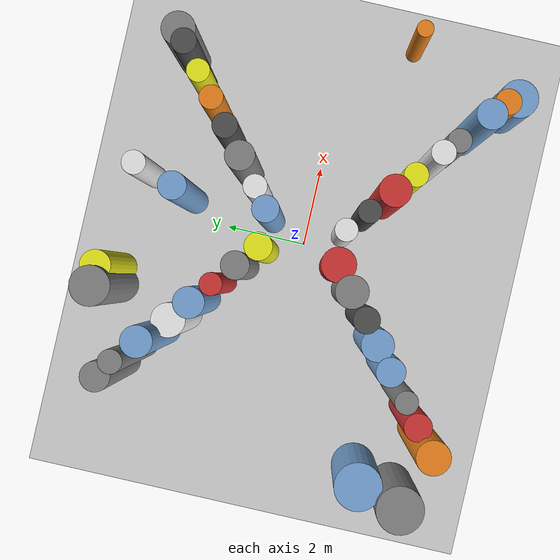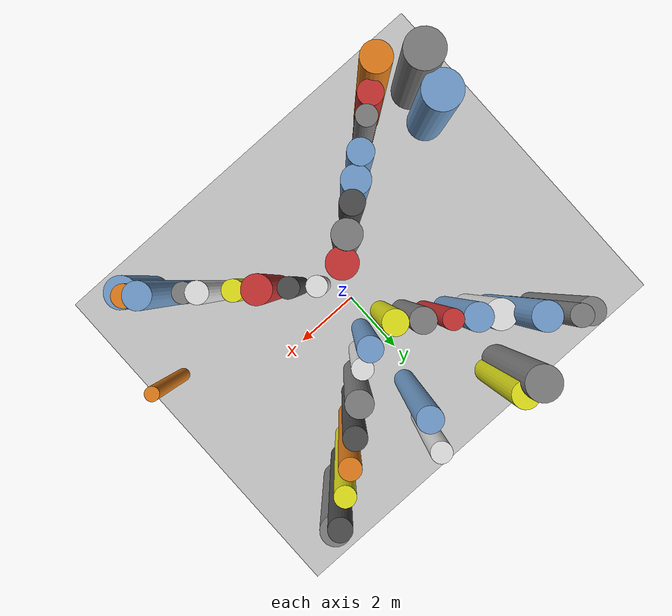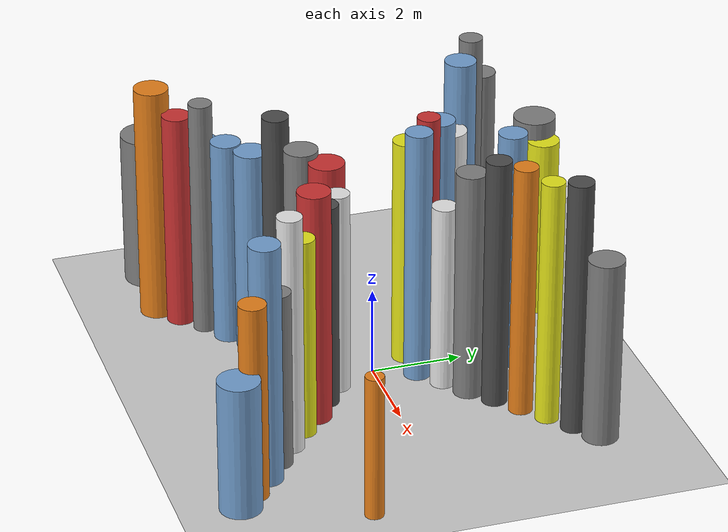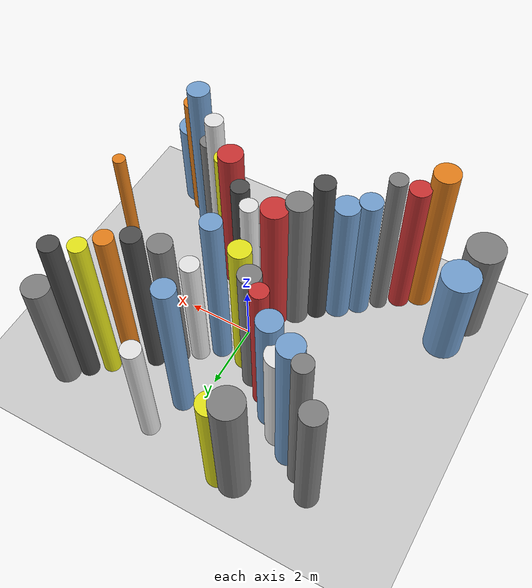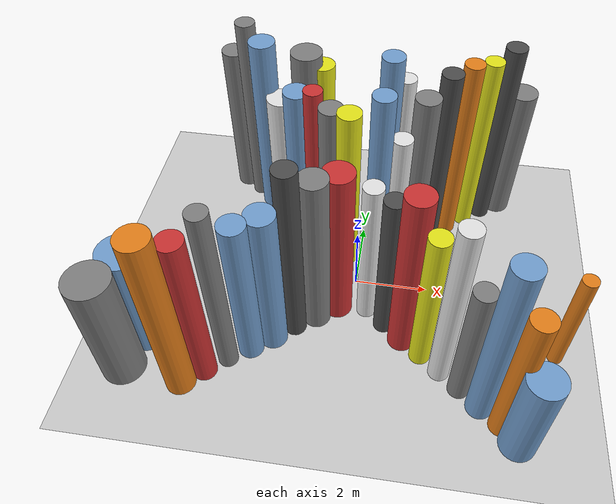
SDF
<?xml version='1.0'?>
<sdf version='1.6'>
  <world name='routeA_rl_v1__dense_recovery__rl_train__bottleneck_corridor__000026'>
    <!-- Sun light -->
    <light name='sun' type='directional'>
      <cast_shadows>1</cast_shadows>
      <pose>0 0 10 0 0 0</pose>
      <diffuse>0.8 0.8 0.8 1</diffuse>
      <specular>0.2 0.2 0.2 1</specular>
      <attenuation>
        <range>1000</range>
        <constant>0.9</constant>
        <linear>0.01</linear>
        <quadratic>0.001</quadratic>
      </attenuation>
      <direction>-0.5 0.1 -0.9</direction>
    </light>

    <!-- Ground plane -->
    <model name='ground_plane'>
      <static>1</static>
      <link name='link'>
        <collision name='collision'>
          <geometry>
            <plane>
              <normal>0 0 1</normal>
              <size>100 100</size>
            </plane>
          </geometry>
          <surface>
            <contact>
              <collide_bitmask>65535</collide_bitmask>
              <ode/>
            </contact>
            <friction>
              <ode>
                <mu>100</mu>
                <mu2>50</mu2>
              </ode>
              <torsional><ode/></torsional>
            </friction>
            <bounce/>
          </surface>
          <max_contacts>10</max_contacts>
        </collision>
        <visual name='visual'>
          <cast_shadows>0</cast_shadows>
          <geometry>
            <plane>
              <normal>0 0 1</normal>
              <size>100 100</size>
            </plane>
          </geometry>
          <material>
            <script>
              <uri>file://media/materials/scripts/gazebo.material</uri>
              <n>Gazebo/Grey</n>
            </script>
          </material>
        </visual>
      </link>
    </model>

    <!-- Environment -->
    <magnetic_field>6e-06 2.3e-05 -4.2e-05</magnetic_field>
    <atmosphere type='adiabatic'/>
    <physics name='default_physics' default='0' type='ode'>
      <gravity>0 0 -9.8</gravity>
      <max_step_size>0.004</max_step_size>
      <real_time_factor>1</real_time_factor>
      <real_time_update_rate>250</real_time_update_rate>
    </physics>
    <scene>
      <ambient>0.4 0.4 0.4 1</ambient>
      <background>0.7 0.7 0.7 1</background>
      <shadows>1</shadows>
    </scene>
    <wind/>
    <spherical_coordinates>
      <surface_model>EARTH_WGS84</surface_model>
      <latitude_deg>0</latitude_deg>
      <longitude_deg>0</longitude_deg>
      <elevation>0</elevation>
      <heading_deg>0</heading_deg>
    </spherical_coordinates>

    <!-- ============ OBSTACLES (40) ============ -->
    <model name='funnel_l_0'>
      <static>1</static>
      <link name='link'>
        <visual name='visual'>
          <geometry>
            <cylinder>
              <radius>0.3863</radius>
              <length>5.5651</length>
            </cylinder>
          </geometry>
          <material>
            <script>
              <n>Gazebo/Orange</n>
              <uri>file://media/materials/scripts/gazebo.material</uri>
            </script>
            <ambient>0.9 0.5 0.1 1</ambient>
          </material>
        </visual>
        <collision name='collision'>
          <geometry>
            <cylinder>
              <radius>0.3863</radius>
              <length>5.5651</length>
            </cylinder>
          </geometry>
          <max_contacts>10</max_contacts>
          <surface>
            <contact><ode/></contact>
            <bounce/>
            <friction>
              <ode><mu>1</mu><mu2>1</mu2></ode>
              <torsional><ode/></torsional>
            </friction>
          </surface>
        </collision>
      </link>
      <pose>-4.0000 -3.8000 2.7826 0 0 0.0000</pose>
    </model>

    <model name='funnel_r_0'>
      <static>1</static>
      <link name='link'>
        <visual name='visual'>
          <geometry>
            <cylinder>
              <radius>0.3448</radius>
              <length>4.8491</length>
            </cylinder>
          </geometry>
          <material>
            <script>
              <n>Gazebo/Grey</n>
              <uri>file://media/materials/scripts/gazebo.material</uri>
            </script>
            <ambient>0.5 0.5 0.5 1</ambient>
          </material>
        </visual>
        <collision name='collision'>
          <geometry>
            <cylinder>
              <radius>0.3448</radius>
              <length>4.8491</length>
            </cylinder>
          </geometry>
          <max_contacts>10</max_contacts>
          <surface>
            <contact><ode/></contact>
            <bounce/>
            <friction>
              <ode><mu>1</mu><mu2>1</mu2></ode>
              <torsional><ode/></torsional>
            </friction>
          </surface>
        </collision>
      </link>
      <pose>-4.0000 3.8000 2.4245 0 0 0.0000</pose>
    </model>

    <model name='funnel_l_1'>
      <static>1</static>
      <link name='link'>
        <visual name='visual'>
          <geometry>
            <cylinder>
              <radius>0.3183</radius>
              <length>5.0921</length>
            </cylinder>
          </geometry>
          <material>
            <script>
              <n>Gazebo/Red</n>
              <uri>file://media/materials/scripts/gazebo.material</uri>
            </script>
            <ambient>0.8 0.2 0.2 1</ambient>
          </material>
        </visual>
        <collision name='collision'>
          <geometry>
            <cylinder>
              <radius>0.3183</radius>
              <length>5.0921</length>
            </cylinder>
          </geometry>
          <max_contacts>10</max_contacts>
          <surface>
            <contact><ode/></contact>
            <bounce/>
            <friction>
              <ode><mu>1</mu><mu2>1</mu2></ode>
              <torsional><ode/></torsional>
            </friction>
          </surface>
        </collision>
      </link>
      <pose>-3.4857 -3.3857 2.5460 0 0 0.0000</pose>
    </model>

    <model name='funnel_r_1'>
      <static>1</static>
      <link name='link'>
        <visual name='visual'>
          <geometry>
            <cylinder>
              <radius>0.2668</radius>
              <length>5.9861</length>
            </cylinder>
          </geometry>
          <material>
            <script>
              <n>Gazebo/Grey</n>
              <uri>file://media/materials/scripts/gazebo.material</uri>
            </script>
            <ambient>0.5 0.5 0.5 1</ambient>
          </material>
        </visual>
        <collision name='collision'>
          <geometry>
            <cylinder>
              <radius>0.2668</radius>
              <length>5.9861</length>
            </cylinder>
          </geometry>
          <max_contacts>10</max_contacts>
          <surface>
            <contact><ode/></contact>
            <bounce/>
            <friction>
              <ode><mu>1</mu><mu2>1</mu2></ode>
              <torsional><ode/></torsional>
            </friction>
          </surface>
        </collision>
      </link>
      <pose>-3.4857 3.3857 2.9931 0 0 0.0000</pose>
    </model>

    <model name='funnel_l_2'>
      <static>1</static>
      <link name='link'>
        <visual name='visual'>
          <geometry>
            <cylinder>
              <radius>0.2610</radius>
              <length>5.5653</length>
            </cylinder>
          </geometry>
          <material>
            <script>
              <n>Gazebo/Grey</n>
              <uri>file://media/materials/scripts/gazebo.material</uri>
            </script>
            <ambient>0.5 0.5 0.5 1</ambient>
          </material>
        </visual>
        <collision name='collision'>
          <geometry>
            <cylinder>
              <radius>0.2610</radius>
              <length>5.5653</length>
            </cylinder>
          </geometry>
          <max_contacts>10</max_contacts>
          <surface>
            <contact><ode/></contact>
            <bounce/>
            <friction>
              <ode><mu>1</mu><mu2>1</mu2></ode>
              <torsional><ode/></torsional>
            </friction>
          </surface>
        </collision>
      </link>
      <pose>-2.9714 -2.9714 2.7826 0 0 0.0000</pose>
    </model>

    <model name='funnel_r_2'>
      <static>1</static>
      <link name='link'>
        <visual name='visual'>
          <geometry>
            <cylinder>
              <radius>0.3562</radius>
              <length>5.7252</length>
            </cylinder>
          </geometry>
          <material>
            <script>
              <n>Gazebo/Blue</n>
              <uri>file://media/materials/scripts/gazebo.material</uri>
            </script>
            <ambient>0.447 0.624 0.812 1</ambient>
          </material>
        </visual>
        <collision name='collision'>
          <geometry>
            <cylinder>
              <radius>0.3562</radius>
              <length>5.7252</length>
            </cylinder>
          </geometry>
          <max_contacts>10</max_contacts>
          <surface>
            <contact><ode/></contact>
            <bounce/>
            <friction>
              <ode><mu>1</mu><mu2>1</mu2></ode>
              <torsional><ode/></torsional>
            </friction>
          </surface>
        </collision>
      </link>
      <pose>-2.9714 2.9714 2.8626 0 0 0.0000</pose>
    </model>

    <model name='funnel_l_3'>
      <static>1</static>
      <link name='link'>
        <visual name='visual'>
          <geometry>
            <cylinder>
              <radius>0.3358</radius>
              <length>4.8277</length>
            </cylinder>
          </geometry>
          <material>
            <script>
              <n>Gazebo/Blue</n>
              <uri>file://media/materials/scripts/gazebo.material</uri>
            </script>
            <ambient>0.447 0.624 0.812 1</ambient>
          </material>
        </visual>
        <collision name='collision'>
          <geometry>
            <cylinder>
              <radius>0.3358</radius>
              <length>4.8277</length>
            </cylinder>
          </geometry>
          <max_contacts>10</max_contacts>
          <surface>
            <contact><ode/></contact>
            <bounce/>
            <friction>
              <ode><mu>1</mu><mu2>1</mu2></ode>
              <torsional><ode/></torsional>
            </friction>
          </surface>
        </collision>
      </link>
      <pose>-2.4571 -2.5571 2.4139 0 0 0.0000</pose>
    </model>

    <model name='funnel_r_3'>
      <static>1</static>
      <link name='link'>
        <visual name='visual'>
          <geometry>
            <cylinder>
              <radius>0.3974</radius>
              <length>4.3222</length>
            </cylinder>
          </geometry>
          <material>
            <script>
              <n>Gazebo/White</n>
              <uri>file://media/materials/scripts/gazebo.material</uri>
            </script>
            <ambient>0.9 0.9 0.9 1</ambient>
          </material>
        </visual>
        <collision name='collision'>
          <geometry>
            <cylinder>
              <radius>0.3974</radius>
              <length>4.3222</length>
            </cylinder>
          </geometry>
          <max_contacts>10</max_contacts>
          <surface>
            <contact><ode/></contact>
            <bounce/>
            <friction>
              <ode><mu>1</mu><mu2>1</mu2></ode>
              <torsional><ode/></torsional>
            </friction>
          </surface>
        </collision>
      </link>
      <pose>-2.4571 2.5571 2.1611 0 0 0.0000</pose>
    </model>

    <model name='funnel_l_4'>
      <static>1</static>
      <link name='link'>
        <visual name='visual'>
          <geometry>
            <cylinder>
              <radius>0.3744</radius>
              <length>4.7901</length>
            </cylinder>
          </geometry>
          <material>
            <script>
              <n>Gazebo/Blue</n>
              <uri>file://media/materials/scripts/gazebo.material</uri>
            </script>
            <ambient>0.447 0.624 0.812 1</ambient>
          </material>
        </visual>
        <collision name='collision'>
          <geometry>
            <cylinder>
              <radius>0.3744</radius>
              <length>4.7901</length>
            </cylinder>
          </geometry>
          <max_contacts>10</max_contacts>
          <surface>
            <contact><ode/></contact>
            <bounce/>
            <friction>
              <ode><mu>1</mu><mu2>1</mu2></ode>
              <torsional><ode/></torsional>
            </friction>
          </surface>
        </collision>
      </link>
      <pose>-1.9429 -2.1429 2.3950 0 0 0.0000</pose>
    </model>

    <model name='funnel_r_4'>
      <static>1</static>
      <link name='link'>
        <visual name='visual'>
          <geometry>
            <cylinder>
              <radius>0.3584</radius>
              <length>4.8876</length>
            </cylinder>
          </geometry>
          <material>
            <script>
              <n>Gazebo/Blue</n>
              <uri>file://media/materials/scripts/gazebo.material</uri>
            </script>
            <ambient>0.447 0.624 0.812 1</ambient>
          </material>
        </visual>
        <collision name='collision'>
          <geometry>
            <cylinder>
              <radius>0.3584</radius>
              <length>4.8876</length>
            </cylinder>
          </geometry>
          <max_contacts>10</max_contacts>
          <surface>
            <contact><ode/></contact>
            <bounce/>
            <friction>
              <ode><mu>1</mu><mu2>1</mu2></ode>
              <torsional><ode/></torsional>
            </friction>
          </surface>
        </collision>
      </link>
      <pose>-1.9429 2.1429 2.4438 0 0 0.0000</pose>
    </model>

    <model name='funnel_l_5'>
      <static>1</static>
      <link name='link'>
        <visual name='visual'>
          <geometry>
            <cylinder>
              <radius>0.2966</radius>
              <length>5.8023</length>
            </cylinder>
          </geometry>
          <material>
            <script>
              <n>Gazebo/DarkGrey</n>
              <uri>file://media/materials/scripts/gazebo.material</uri>
            </script>
            <ambient>0.3 0.3 0.3 1</ambient>
          </material>
        </visual>
        <collision name='collision'>
          <geometry>
            <cylinder>
              <radius>0.2966</radius>
              <length>5.8023</length>
            </cylinder>
          </geometry>
          <max_contacts>10</max_contacts>
          <surface>
            <contact><ode/></contact>
            <bounce/>
            <friction>
              <ode><mu>1</mu><mu2>1</mu2></ode>
              <torsional><ode/></torsional>
            </friction>
          </surface>
        </collision>
      </link>
      <pose>-1.4286 -1.7286 2.9012 0 0 0.0000</pose>
    </model>

    <model name='funnel_r_5'>
      <static>1</static>
      <link name='link'>
        <visual name='visual'>
          <geometry>
            <cylinder>
              <radius>0.2560</radius>
              <length>5.2682</length>
            </cylinder>
          </geometry>
          <material>
            <script>
              <n>Gazebo/Red</n>
              <uri>file://media/materials/scripts/gazebo.material</uri>
            </script>
            <ambient>0.8 0.2 0.2 1</ambient>
          </material>
        </visual>
        <collision name='collision'>
          <geometry>
            <cylinder>
              <radius>0.2560</radius>
              <length>5.2682</length>
            </cylinder>
          </geometry>
          <max_contacts>10</max_contacts>
          <surface>
            <contact><ode/></contact>
            <bounce/>
            <friction>
              <ode><mu>1</mu><mu2>1</mu2></ode>
              <torsional><ode/></torsional>
            </friction>
          </surface>
        </collision>
      </link>
      <pose>-1.4286 1.7286 2.6341 0 0 0.0000</pose>
    </model>

    <model name='funnel_l_6'>
      <static>1</static>
      <link name='link'>
        <visual name='visual'>
          <geometry>
            <cylinder>
              <radius>0.3750</radius>
              <length>5.2077</length>
            </cylinder>
          </geometry>
          <material>
            <script>
              <n>Gazebo/Grey</n>
              <uri>file://media/materials/scripts/gazebo.material</uri>
            </script>
            <ambient>0.5 0.5 0.5 1</ambient>
          </material>
        </visual>
        <collision name='collision'>
          <geometry>
            <cylinder>
              <radius>0.3750</radius>
              <length>5.2077</length>
            </cylinder>
          </geometry>
          <max_contacts>10</max_contacts>
          <surface>
            <contact><ode/></contact>
            <bounce/>
            <friction>
              <ode><mu>1</mu><mu2>1</mu2></ode>
              <torsional><ode/></torsional>
            </friction>
          </surface>
        </collision>
      </link>
      <pose>-0.9143 -1.3143 2.6038 0 0 0.0000</pose>
    </model>

    <model name='funnel_r_6'>
      <static>1</static>
      <link name='link'>
        <visual name='visual'>
          <geometry>
            <cylinder>
              <radius>0.3232</radius>
              <length>5.1041</length>
            </cylinder>
          </geometry>
          <material>
            <script>
              <n>Gazebo/Grey</n>
              <uri>file://media/materials/scripts/gazebo.material</uri>
            </script>
            <ambient>0.5 0.5 0.5 1</ambient>
          </material>
        </visual>
        <collision name='collision'>
          <geometry>
            <cylinder>
              <radius>0.3232</radius>
              <length>5.1041</length>
            </cylinder>
          </geometry>
          <max_contacts>10</max_contacts>
          <surface>
            <contact><ode/></contact>
            <bounce/>
            <friction>
              <ode><mu>1</mu><mu2>1</mu2></ode>
              <torsional><ode/></torsional>
            </friction>
          </surface>
        </collision>
      </link>
      <pose>-0.9143 1.3143 2.5520 0 0 0.0000</pose>
    </model>

    <model name='funnel_l_7'>
      <static>1</static>
      <link name='link'>
        <visual name='visual'>
          <geometry>
            <cylinder>
              <radius>0.3967</radius>
              <length>5.0836</length>
            </cylinder>
          </geometry>
          <material>
            <script>
              <n>Gazebo/Red</n>
              <uri>file://media/materials/scripts/gazebo.material</uri>
            </script>
            <ambient>0.8 0.2 0.2 1</ambient>
          </material>
        </visual>
        <collision name='collision'>
          <geometry>
            <cylinder>
              <radius>0.3967</radius>
              <length>5.0836</length>
            </cylinder>
          </geometry>
          <max_contacts>10</max_contacts>
          <surface>
            <contact><ode/></contact>
            <bounce/>
            <friction>
              <ode><mu>1</mu><mu2>1</mu2></ode>
              <torsional><ode/></torsional>
            </friction>
          </surface>
        </collision>
      </link>
      <pose>-0.4000 -0.9000 2.5418 0 0 0.0000</pose>
    </model>

    <model name='funnel_r_7'>
      <static>1</static>
      <link name='link'>
        <visual name='visual'>
          <geometry>
            <cylinder>
              <radius>0.3152</radius>
              <length>5.3343</length>
            </cylinder>
          </geometry>
          <material>
            <script>
              <n>Gazebo/Yellow</n>
              <uri>file://media/materials/scripts/gazebo.material</uri>
            </script>
            <ambient>0.9 0.9 0.1 1</ambient>
          </material>
        </visual>
        <collision name='collision'>
          <geometry>
            <cylinder>
              <radius>0.3152</radius>
              <length>5.3343</length>
            </cylinder>
          </geometry>
          <max_contacts>10</max_contacts>
          <surface>
            <contact><ode/></contact>
            <bounce/>
            <friction>
              <ode><mu>1</mu><mu2>1</mu2></ode>
              <torsional><ode/></torsional>
            </friction>
          </surface>
        </collision>
      </link>
      <pose>-0.4000 0.9000 2.6671 0 0 0.0000</pose>
    </model>

    <model name='funnel_out_l_0'>
      <static>1</static>
      <link name='link'>
        <visual name='visual'>
          <geometry>
            <cylinder>
              <radius>0.2644</radius>
              <length>4.7482</length>
            </cylinder>
          </geometry>
          <material>
            <script>
              <n>Gazebo/White</n>
              <uri>file://media/materials/scripts/gazebo.material</uri>
            </script>
            <ambient>0.9 0.9 0.9 1</ambient>
          </material>
        </visual>
        <collision name='collision'>
          <geometry>
            <cylinder>
              <radius>0.2644</radius>
              <length>4.7482</length>
            </cylinder>
          </geometry>
          <max_contacts>10</max_contacts>
          <surface>
            <contact><ode/></contact>
            <bounce/>
            <friction>
              <ode><mu>1</mu><mu2>1</mu2></ode>
              <torsional><ode/></torsional>
            </friction>
          </surface>
        </collision>
      </link>
      <pose>0.4000 -0.9000 2.3741 0 0 0.0000</pose>
    </model>

    <model name='funnel_out_r_0'>
      <static>1</static>
      <link name='link'>
        <visual name='visual'>
          <geometry>
            <cylinder>
              <radius>0.2985</radius>
              <length>5.9244</length>
            </cylinder>
          </geometry>
          <material>
            <script>
              <n>Gazebo/Blue</n>
              <uri>file://media/materials/scripts/gazebo.material</uri>
            </script>
            <ambient>0.447 0.624 0.812 1</ambient>
          </material>
        </visual>
        <collision name='collision'>
          <geometry>
            <cylinder>
              <radius>0.2985</radius>
              <length>5.9244</length>
            </cylinder>
          </geometry>
          <max_contacts>10</max_contacts>
          <surface>
            <contact><ode/></contact>
            <bounce/>
            <friction>
              <ode><mu>1</mu><mu2>1</mu2></ode>
              <torsional><ode/></torsional>
            </friction>
          </surface>
        </collision>
      </link>
      <pose>0.4000 0.9000 2.9622 0 0 0.0000</pose>
    </model>

    <model name='funnel_out_l_1'>
      <static>1</static>
      <link name='link'>
        <visual name='visual'>
          <geometry>
            <cylinder>
              <radius>0.2708</radius>
              <length>4.8162</length>
            </cylinder>
          </geometry>
          <material>
            <script>
              <n>Gazebo/DarkGrey</n>
              <uri>file://media/materials/scripts/gazebo.material</uri>
            </script>
            <ambient>0.3 0.3 0.3 1</ambient>
          </material>
        </visual>
        <collision name='collision'>
          <geometry>
            <cylinder>
              <radius>0.2708</radius>
              <length>4.8162</length>
            </cylinder>
          </geometry>
          <max_contacts>10</max_contacts>
          <surface>
            <contact><ode/></contact>
            <bounce/>
            <friction>
              <ode><mu>1</mu><mu2>1</mu2></ode>
              <torsional><ode/></torsional>
            </friction>
          </surface>
        </collision>
      </link>
      <pose>0.9143 -1.3143 2.4081 0 0 0.0000</pose>
    </model>

    <model name='funnel_out_r_1'>
      <static>1</static>
      <link name='link'>
        <visual name='visual'>
          <geometry>
            <cylinder>
              <radius>0.2796</radius>
              <length>4.3571</length>
            </cylinder>
          </geometry>
          <material>
            <script>
              <n>Gazebo/White</n>
              <uri>file://media/materials/scripts/gazebo.material</uri>
            </script>
            <ambient>0.9 0.9 0.9 1</ambient>
          </material>
        </visual>
        <collision name='collision'>
          <geometry>
            <cylinder>
              <radius>0.2796</radius>
              <length>4.3571</length>
            </cylinder>
          </geometry>
          <max_contacts>10</max_contacts>
          <surface>
            <contact><ode/></contact>
            <bounce/>
            <friction>
              <ode><mu>1</mu><mu2>1</mu2></ode>
              <torsional><ode/></torsional>
            </friction>
          </surface>
        </collision>
      </link>
      <pose>0.9143 1.3143 2.1785 0 0 0.0000</pose>
    </model>

    <model name='funnel_out_l_2'>
      <static>1</static>
      <link name='link'>
        <visual name='visual'>
          <geometry>
            <cylinder>
              <radius>0.3633</radius>
              <length>5.4557</length>
            </cylinder>
          </geometry>
          <material>
            <script>
              <n>Gazebo/Red</n>
              <uri>file://media/materials/scripts/gazebo.material</uri>
            </script>
            <ambient>0.8 0.2 0.2 1</ambient>
          </material>
        </visual>
        <collision name='collision'>
          <geometry>
            <cylinder>
              <radius>0.3633</radius>
              <length>5.4557</length>
            </cylinder>
          </geometry>
          <max_contacts>10</max_contacts>
          <surface>
            <contact><ode/></contact>
            <bounce/>
            <friction>
              <ode><mu>1</mu><mu2>1</mu2></ode>
              <torsional><ode/></torsional>
            </friction>
          </surface>
        </collision>
      </link>
      <pose>1.4286 -1.7286 2.7278 0 0 0.0000</pose>
    </model>

    <model name='funnel_out_r_2'>
      <static>1</static>
      <link name='link'>
        <visual name='visual'>
          <geometry>
            <cylinder>
              <radius>0.3369</radius>
              <length>5.3535</length>
            </cylinder>
          </geometry>
          <material>
            <script>
              <n>Gazebo/Grey</n>
              <uri>file://media/materials/scripts/gazebo.material</uri>
            </script>
            <ambient>0.5 0.5 0.5 1</ambient>
          </material>
        </visual>
        <collision name='collision'>
          <geometry>
            <cylinder>
              <radius>0.3369</radius>
              <length>5.3535</length>
            </cylinder>
          </geometry>
          <max_contacts>10</max_contacts>
          <surface>
            <contact><ode/></contact>
            <bounce/>
            <friction>
              <ode><mu>1</mu><mu2>1</mu2></ode>
              <torsional><ode/></torsional>
            </friction>
          </surface>
        </collision>
      </link>
      <pose>1.4286 1.7286 2.6767 0 0 0.0000</pose>
    </model>

    <model name='funnel_out_l_3'>
      <static>1</static>
      <link name='link'>
        <visual name='visual'>
          <geometry>
            <cylinder>
              <radius>0.2775</radius>
              <length>4.6928</length>
            </cylinder>
          </geometry>
          <material>
            <script>
              <n>Gazebo/Yellow</n>
              <uri>file://media/materials/scripts/gazebo.material</uri>
            </script>
            <ambient>0.9 0.9 0.1 1</ambient>
          </material>
        </visual>
        <collision name='collision'>
          <geometry>
            <cylinder>
              <radius>0.2775</radius>
              <length>4.6928</length>
            </cylinder>
          </geometry>
          <max_contacts>10</max_contacts>
          <surface>
            <contact><ode/></contact>
            <bounce/>
            <friction>
              <ode><mu>1</mu><mu2>1</mu2></ode>
              <torsional><ode/></torsional>
            </friction>
          </surface>
        </collision>
      </link>
      <pose>1.9429 -2.1429 2.3464 0 0 0.0000</pose>
    </model>

    <model name='funnel_out_r_3'>
      <static>1</static>
      <link name='link'>
        <visual name='visual'>
          <geometry>
            <cylinder>
              <radius>0.2808</radius>
              <length>5.8227</length>
            </cylinder>
          </geometry>
          <material>
            <script>
              <n>Gazebo/DarkGrey</n>
              <uri>file://media/materials/scripts/gazebo.material</uri>
            </script>
            <ambient>0.3 0.3 0.3 1</ambient>
          </material>
        </visual>
        <collision name='collision'>
          <geometry>
            <cylinder>
              <radius>0.2808</radius>
              <length>5.8227</length>
            </cylinder>
          </geometry>
          <max_contacts>10</max_contacts>
          <surface>
            <contact><ode/></contact>
            <bounce/>
            <friction>
              <ode><mu>1</mu><mu2>1</mu2></ode>
              <torsional><ode/></torsional>
            </friction>
          </surface>
        </collision>
      </link>
      <pose>1.9429 2.1429 2.9113 0 0 0.0000</pose>
    </model>

    <model name='funnel_out_l_4'>
      <static>1</static>
      <link name='link'>
        <visual name='visual'>
          <geometry>
            <cylinder>
              <radius>0.2746</radius>
              <length>5.5238</length>
            </cylinder>
          </geometry>
          <material>
            <script>
              <n>Gazebo/White</n>
              <uri>file://media/materials/scripts/gazebo.material</uri>
            </script>
            <ambient>0.9 0.9 0.9 1</ambient>
          </material>
        </visual>
        <collision name='collision'>
          <geometry>
            <cylinder>
              <radius>0.2746</radius>
              <length>5.5238</length>
            </cylinder>
          </geometry>
          <max_contacts>10</max_contacts>
          <surface>
            <contact><ode/></contact>
            <bounce/>
            <friction>
              <ode><mu>1</mu><mu2>1</mu2></ode>
              <torsional><ode/></torsional>
            </friction>
          </surface>
        </collision>
      </link>
      <pose>2.4571 -2.5571 2.7619 0 0 0.0000</pose>
    </model>

    <model name='funnel_out_r_4'>
      <static>1</static>
      <link name='link'>
        <visual name='visual'>
          <geometry>
            <cylinder>
              <radius>0.2648</radius>
              <length>5.8661</length>
            </cylinder>
          </geometry>
          <material>
            <script>
              <n>Gazebo/Orange</n>
              <uri>file://media/materials/scripts/gazebo.material</uri>
            </script>
            <ambient>0.9 0.5 0.1 1</ambient>
          </material>
        </visual>
        <collision name='collision'>
          <geometry>
            <cylinder>
              <radius>0.2648</radius>
              <length>5.8661</length>
            </cylinder>
          </geometry>
          <max_contacts>10</max_contacts>
          <surface>
            <contact><ode/></contact>
            <bounce/>
            <friction>
              <ode><mu>1</mu><mu2>1</mu2></ode>
              <torsional><ode/></torsional>
            </friction>
          </surface>
        </collision>
      </link>
      <pose>2.4571 2.5571 2.9331 0 0 0.0000</pose>
    </model>

    <model name='funnel_out_l_5'>
      <static>1</static>
      <link name='link'>
        <visual name='visual'>
          <geometry>
            <cylinder>
              <radius>0.2796</radius>
              <length>4.1132</length>
            </cylinder>
          </geometry>
          <material>
            <script>
              <n>Gazebo/Grey</n>
              <uri>file://media/materials/scripts/gazebo.material</uri>
            </script>
            <ambient>0.5 0.5 0.5 1</ambient>
          </material>
        </visual>
        <collision name='collision'>
          <geometry>
            <cylinder>
              <radius>0.2796</radius>
              <length>4.1132</length>
            </cylinder>
          </geometry>
          <max_contacts>10</max_contacts>
          <surface>
            <contact><ode/></contact>
            <bounce/>
            <friction>
              <ode><mu>1</mu><mu2>1</mu2></ode>
              <torsional><ode/></torsional>
            </friction>
          </surface>
        </collision>
      </link>
      <pose>2.9714 -2.9714 2.0566 0 0 0.0000</pose>
    </model>

    <model name='funnel_out_r_5'>
      <static>1</static>
      <link name='link'>
        <visual name='visual'>
          <geometry>
            <cylinder>
              <radius>0.2566</radius>
              <length>5.7157</length>
            </cylinder>
          </geometry>
          <material>
            <script>
              <n>Gazebo/Yellow</n>
              <uri>file://media/materials/scripts/gazebo.material</uri>
            </script>
            <ambient>0.9 0.9 0.1 1</ambient>
          </material>
        </visual>
        <collision name='collision'>
          <geometry>
            <cylinder>
              <radius>0.2566</radius>
              <length>5.7157</length>
            </cylinder>
          </geometry>
          <max_contacts>10</max_contacts>
          <surface>
            <contact><ode/></contact>
            <bounce/>
            <friction>
              <ode><mu>1</mu><mu2>1</mu2></ode>
              <torsional><ode/></torsional>
            </friction>
          </surface>
        </collision>
      </link>
      <pose>2.9714 2.9714 2.8579 0 0 0.0000</pose>
    </model>

    <model name='funnel_out_l_6'>
      <static>1</static>
      <link name='link'>
        <visual name='visual'>
          <geometry>
            <cylinder>
              <radius>0.3402</radius>
              <length>5.5621</length>
            </cylinder>
          </geometry>
          <material>
            <script>
              <n>Gazebo/Blue</n>
              <uri>file://media/materials/scripts/gazebo.material</uri>
            </script>
            <ambient>0.447 0.624 0.812 1</ambient>
          </material>
        </visual>
        <collision name='collision'>
          <geometry>
            <cylinder>
              <radius>0.3402</radius>
              <length>5.5621</length>
            </cylinder>
          </geometry>
          <max_contacts>10</max_contacts>
          <surface>
            <contact><ode/></contact>
            <bounce/>
            <friction>
              <ode><mu>1</mu><mu2>1</mu2></ode>
              <torsional><ode/></torsional>
            </friction>
          </surface>
        </collision>
      </link>
      <pose>3.4857 -3.3857 2.7810 0 0 0.0000</pose>
    </model>

    <model name='funnel_out_r_6'>
      <static>1</static>
      <link name='link'>
        <visual name='visual'>
          <geometry>
            <cylinder>
              <radius>0.2810</radius>
              <length>5.8989</length>
            </cylinder>
          </geometry>
          <material>
            <script>
              <n>Gazebo/DarkGrey</n>
              <uri>file://media/materials/scripts/gazebo.material</uri>
            </script>
            <ambient>0.3 0.3 0.3 1</ambient>
          </material>
        </visual>
        <collision name='collision'>
          <geometry>
            <cylinder>
              <radius>0.2810</radius>
              <length>5.8989</length>
            </cylinder>
          </geometry>
          <max_contacts>10</max_contacts>
          <surface>
            <contact><ode/></contact>
            <bounce/>
            <friction>
              <ode><mu>1</mu><mu2>1</mu2></ode>
              <torsional><ode/></torsional>
            </friction>
          </surface>
        </collision>
      </link>
      <pose>3.4857 3.3857 2.9494 0 0 0.0000</pose>
    </model>

    <model name='funnel_out_l_7'>
      <static>1</static>
      <link name='link'>
        <visual name='visual'>
          <geometry>
            <cylinder>
              <radius>0.2975</radius>
              <length>4.5345</length>
            </cylinder>
          </geometry>
          <material>
            <script>
              <n>Gazebo/Orange</n>
              <uri>file://media/materials/scripts/gazebo.material</uri>
            </script>
            <ambient>0.9 0.5 0.1 1</ambient>
          </material>
        </visual>
        <collision name='collision'>
          <geometry>
            <cylinder>
              <radius>0.2975</radius>
              <length>4.5345</length>
            </cylinder>
          </geometry>
          <max_contacts>10</max_contacts>
          <surface>
            <contact><ode/></contact>
            <bounce/>
            <friction>
              <ode><mu>1</mu><mu2>1</mu2></ode>
              <torsional><ode/></torsional>
            </friction>
          </surface>
        </collision>
      </link>
      <pose>4.0000 -3.8000 2.2673 0 0 0.0000</pose>
    </model>

    <model name='funnel_out_r_7'>
      <static>1</static>
      <link name='link'>
        <visual name='visual'>
          <geometry>
            <cylinder>
              <radius>0.3946</radius>
              <length>4.2899</length>
            </cylinder>
          </geometry>
          <material>
            <script>
              <n>Gazebo/Grey</n>
              <uri>file://media/materials/scripts/gazebo.material</uri>
            </script>
            <ambient>0.5 0.5 0.5 1</ambient>
          </material>
        </visual>
        <collision name='collision'>
          <geometry>
            <cylinder>
              <radius>0.3946</radius>
              <length>4.2899</length>
            </cylinder>
          </geometry>
          <max_contacts>10</max_contacts>
          <surface>
            <contact><ode/></contact>
            <bounce/>
            <friction>
              <ode><mu>1</mu><mu2>1</mu2></ode>
              <torsional><ode/></torsional>
            </friction>
          </surface>
        </collision>
      </link>
      <pose>4.0000 3.8000 2.1450 0 0 0.0000</pose>
    </model>

    <model name='bn_scatter_0'>
      <static>1</static>
      <link name='link'>
        <visual name='visual'>
          <geometry>
            <cylinder>
              <radius>0.4570</radius>
              <length>3.0513</length>
            </cylinder>
          </geometry>
          <material>
            <script>
              <n>Gazebo/Blue</n>
              <uri>file://media/materials/scripts/gazebo.material</uri>
            </script>
            <ambient>0.447 0.624 0.812 1</ambient>
          </material>
        </visual>
        <collision name='collision'>
          <geometry>
            <cylinder>
              <radius>0.4570</radius>
              <length>3.0513</length>
            </cylinder>
          </geometry>
          <max_contacts>10</max_contacts>
          <surface>
            <contact><ode/></contact>
            <bounce/>
            <friction>
              <ode><mu>1</mu><mu2>1</mu2></ode>
              <torsional><ode/></torsional>
            </friction>
          </surface>
        </collision>
      </link>
      <pose>4.3882 -4.2155 1.5256 0 0 0.0000</pose>
    </model>

    <model name='bn_scatter_1'>
      <static>1</static>
      <link name='link'>
        <visual name='visual'>
          <geometry>
            <cylinder>
              <radius>0.2820</radius>
              <length>4.1893</length>
            </cylinder>
          </geometry>
          <material>
            <script>
              <n>Gazebo/White</n>
              <uri>file://media/materials/scripts/gazebo.material</uri>
            </script>
            <ambient>0.9 0.9 0.9 1</ambient>
          </material>
        </visual>
        <collision name='collision'>
          <geometry>
            <cylinder>
              <radius>0.2820</radius>
              <length>4.1893</length>
            </cylinder>
          </geometry>
          <max_contacts>10</max_contacts>
          <surface>
            <contact><ode/></contact>
            <bounce/>
            <friction>
              <ode><mu>1</mu><mu2>1</mu2></ode>
              <torsional><ode/></torsional>
            </friction>
          </surface>
        </collision>
      </link>
      <pose>0.8413 4.1271 2.0946 0 0 0.0000</pose>
    </model>

    <model name='bn_scatter_2'>
      <static>1</static>
      <link name='link'>
        <visual name='visual'>
          <geometry>
            <cylinder>
              <radius>0.3169</radius>
              <length>5.6102</length>
            </cylinder>
          </geometry>
          <material>
            <script>
              <n>Gazebo/Blue</n>
              <uri>file://media/materials/scripts/gazebo.material</uri>
            </script>
            <ambient>0.447 0.624 0.812 1</ambient>
          </material>
        </visual>
        <collision name='collision'>
          <geometry>
            <cylinder>
              <radius>0.3169</radius>
              <length>5.6102</length>
            </cylinder>
          </geometry>
          <max_contacts>10</max_contacts>
          <surface>
            <contact><ode/></contact>
            <bounce/>
            <friction>
              <ode><mu>1</mu><mu2>1</mu2></ode>
              <torsional><ode/></torsional>
            </friction>
          </surface>
        </collision>
      </link>
      <pose>0.4590 2.9810 2.8051 0 0 0.0000</pose>
    </model>

    <model name='bn_scatter_3'>
      <static>1</static>
      <link name='link'>
        <visual name='visual'>
          <geometry>
            <cylinder>
              <radius>0.4661</radius>
              <length>4.5743</length>
            </cylinder>
          </geometry>
          <material>
            <script>
              <n>Gazebo/Grey</n>
              <uri>file://media/materials/scripts/gazebo.material</uri>
            </script>
            <ambient>0.5 0.5 0.5 1</ambient>
          </material>
        </visual>
        <collision name='collision'>
          <geometry>
            <cylinder>
              <radius>0.4661</radius>
              <length>4.5743</length>
            </cylinder>
          </geometry>
          <max_contacts>10</max_contacts>
          <surface>
            <contact><ode/></contact>
            <bounce/>
            <friction>
              <ode><mu>1</mu><mu2>1</mu2></ode>
              <torsional><ode/></torsional>
            </friction>
          </surface>
        </collision>
      </link>
      <pose>-2.0839 4.4089 2.2872 0 0 0.0000</pose>
    </model>

    <model name='bn_scatter_4'>
      <static>1</static>
      <link name='link'>
        <visual name='visual'>
          <geometry>
            <cylinder>
              <radius>0.5695</radius>
              <length>3.6324</length>
            </cylinder>
          </geometry>
          <material>
            <script>
              <n>Gazebo/Grey</n>
              <uri>file://media/materials/scripts/gazebo.material</uri>
            </script>
            <ambient>0.5 0.5 0.5 1</ambient>
          </material>
        </visual>
        <collision name='collision'>
          <geometry>
            <cylinder>
              <radius>0.5695</radius>
              <length>3.6324</length>
            </cylinder>
          </geometry>
          <max_contacts>10</max_contacts>
          <surface>
            <contact><ode/></contact>
            <bounce/>
            <friction>
              <ode><mu>1</mu><mu2>1</mu2></ode>
              <torsional><ode/></torsional>
            </friction>
          </surface>
        </collision>
      </link>
      <pose>-5.5884 -3.5720 1.8162 0 0 0.0000</pose>
    </model>

    <model name='bn_scatter_5'>
      <static>1</static>
      <link name='link'>
        <visual name='visual'>
          <geometry>
            <cylinder>
              <radius>0.5742</radius>
              <length>3.3958</length>
            </cylinder>
          </geometry>
          <material>
            <script>
              <n>Gazebo/Blue</n>
              <uri>file://media/materials/scripts/gazebo.material</uri>
            </script>
            <ambient>0.447 0.624 0.812 1</ambient>
          </material>
        </visual>
        <collision name='collision'>
          <geometry>
            <cylinder>
              <radius>0.5742</radius>
              <length>3.3958</length>
            </cylinder>
          </geometry>
          <max_contacts>10</max_contacts>
          <surface>
            <contact><ode/></contact>
            <bounce/>
            <friction>
              <ode><mu>1</mu><mu2>1</mu2></ode>
              <torsional><ode/></torsional>
            </friction>
          </surface>
        </collision>
      </link>
      <pose>-5.3112 -2.5247 1.6979 0 0 0.0000</pose>
    </model>

    <model name='bn_scatter_6'>
      <static>1</static>
      <link name='link'>
        <visual name='visual'>
          <geometry>
            <cylinder>
              <radius>0.2030</radius>
              <length>3.3050</length>
            </cylinder>
          </geometry>
          <material>
            <script>
              <n>Gazebo/Orange</n>
              <uri>file://media/materials/scripts/gazebo.material</uri>
            </script>
            <ambient>0.9 0.5 0.1 1</ambient>
          </material>
        </visual>
        <collision name='collision'>
          <geometry>
            <cylinder>
              <radius>0.2030</radius>
              <length>3.3050</length>
            </cylinder>
          </geometry>
          <max_contacts>10</max_contacts>
          <surface>
            <contact><ode/></contact>
            <bounce/>
            <friction>
              <ode><mu>1</mu><mu2>1</mu2></ode>
              <torsional><ode/></torsional>
            </friction>
          </surface>
        </collision>
      </link>
      <pose>5.4529 -1.6805 1.6525 0 0 0.0000</pose>
    </model>

    <model name='bn_scatter_7'>
      <static>1</static>
      <link name='link'>
        <visual name='visual'>
          <geometry>
            <cylinder>
              <radius>0.3618</radius>
              <length>4.1932</length>
            </cylinder>
          </geometry>
          <material>
            <script>
              <n>Gazebo/Yellow</n>
              <uri>file://media/materials/scripts/gazebo.material</uri>
            </script>
            <ambient>0.9 0.9 0.1 1</ambient>
          </material>
        </visual>
        <collision name='collision'>
          <geometry>
            <cylinder>
              <radius>0.3618</radius>
              <length>4.1932</length>
            </cylinder>
          </geometry>
          <max_contacts>10</max_contacts>
          <surface>
            <contact><ode/></contact>
            <bounce/>
            <friction>
              <ode><mu>1</mu><mu2>1</mu2></ode>
              <torsional><ode/></torsional>
            </friction>
          </surface>
        </collision>
      </link>
      <pose>-1.6200 4.4520 2.0966 0 0 0.0000</pose>
    </model>

    <!-- GUI camera -->
    <gui fullscreen='0'>
      <camera name='user_camera'>
        <pose>-15 0 18 0 0.85 0.15</pose>
        <view_controller>orbit</view_controller>
        <projection_type>perspective</projection_type>
      </camera>
    </gui>
  </world>
</sdf>
